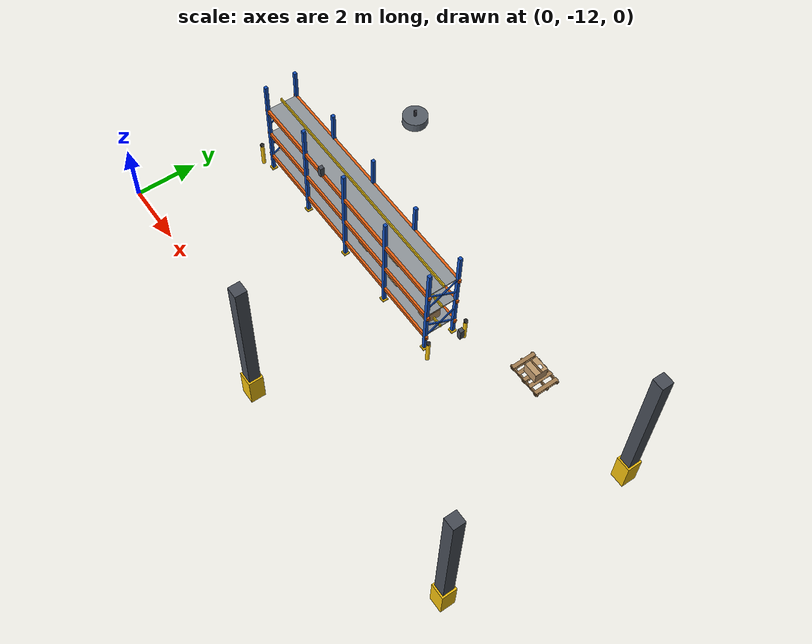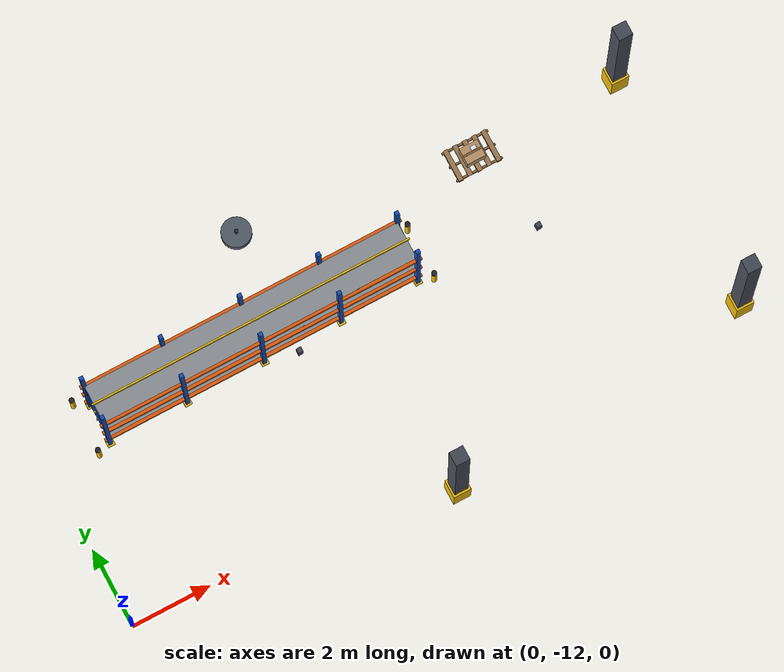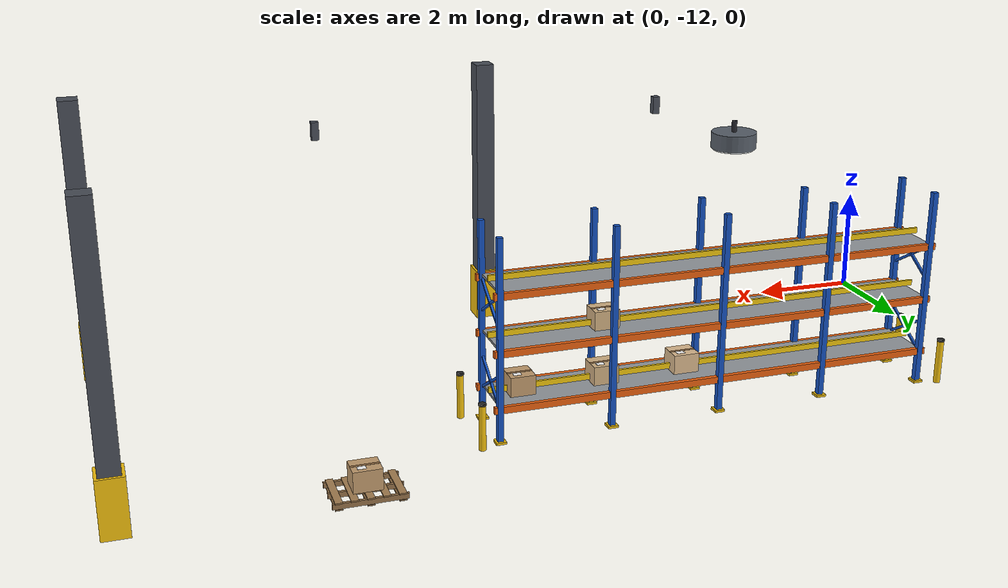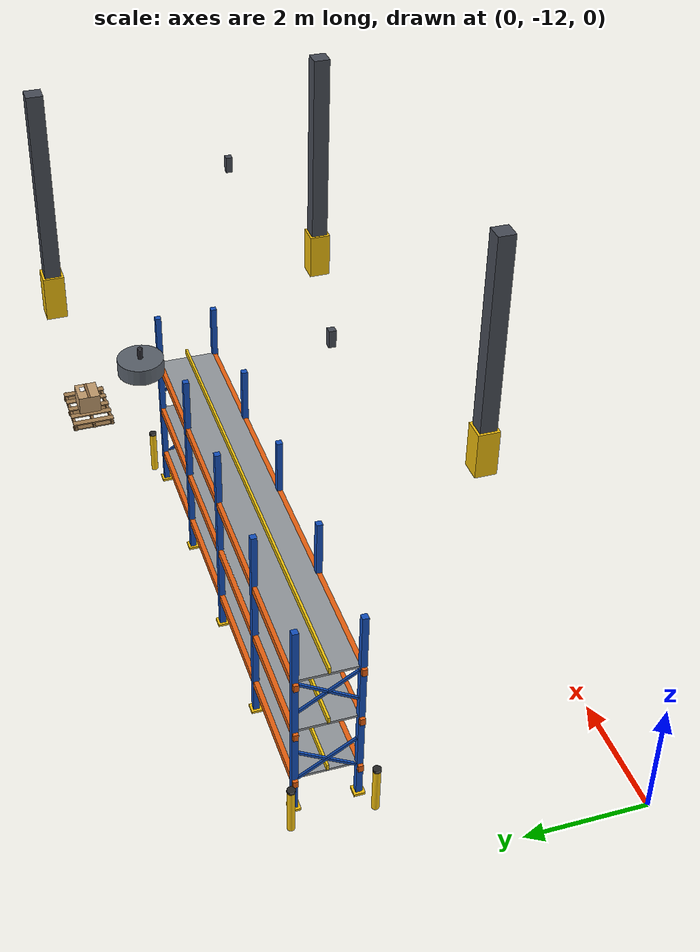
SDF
<sdf version="1.8">
 <world name="warehouse_3d">
  <model name="warehouse_architecture">
   <static>true</static>
   <link name="col_4_base">
    <pose>15.7500 -12.0000 0.5000 0.0000 0.0000 0.0000</pose>
    <collision name="col_4_base_col"><geometry><box><size>0.4500 0.4500 1.0000</size></box></geometry></collision>
    <visual name="col_4_base_vis">
     <geometry><box><size>0.4500 0.4500 1.0000</size></box></geometry>
     <material>
      <ambient>0.617 0.488 0.033 1.00</ambient>
      <diffuse>0.950 0.750 0.050 1.00</diffuse>
      <specular>0.15 0.15 0.15 1.0</specular>
     </material>
    </visual>
   </link>
   <link name="col_4_stem">
    <pose>15.7500 -12.0000 3.1000 0.0000 0.0000 0.0000</pose>
    <collision name="col_4_stem_col"><geometry><box><size>0.3500 0.3500 4.2000</size></box></geometry></collision>
    <visual name="col_4_stem_vis">
     <geometry><box><size>0.3500 0.3500 4.2000</size></box></geometry>
     <material>
      <ambient>0.182 0.195 0.221 1.00</ambient>
      <diffuse>0.280 0.300 0.340 1.00</diffuse>
      <specular>0.15 0.15 0.15 1.0</specular>
     </material>
    </visual>
   </link>
   <link name="col_5_base">
    <pose>15.7500 -6.0000 0.5000 0.0000 0.0000 0.0000</pose>
    <collision name="col_5_base_col"><geometry><box><size>0.4500 0.4500 1.0000</size></box></geometry></collision>
    <visual name="col_5_base_vis">
     <geometry><box><size>0.4500 0.4500 1.0000</size></box></geometry>
     <material>
      <ambient>0.617 0.488 0.033 1.00</ambient>
      <diffuse>0.950 0.750 0.050 1.00</diffuse>
      <specular>0.15 0.15 0.15 1.0</specular>
     </material>
    </visual>
   </link>
   <link name="col_5_stem">
    <pose>15.7500 -6.0000 3.1000 0.0000 0.0000 0.0000</pose>
    <collision name="col_5_stem_col"><geometry><box><size>0.3500 0.3500 4.2000</size></box></geometry></collision>
    <visual name="col_5_stem_vis">
     <geometry><box><size>0.3500 0.3500 4.2000</size></box></geometry>
     <material>
      <ambient>0.182 0.195 0.221 1.00</ambient>
      <diffuse>0.280 0.300 0.340 1.00</diffuse>
      <specular>0.15 0.15 0.15 1.0</specular>
     </material>
    </visual>
   </link>
   <link name="col_14_base">
    <pose>8.0000 -12.7500 0.5000 0.0000 0.0000 0.0000</pose>
    <collision name="col_14_base_col">
     <geometry><box><size>0.4500 0.4500 1.0000</size></box></geometry>
    </collision>
    <visual name="col_14_base_vis">
     <geometry><box><size>0.4500 0.4500 1.0000</size></box></geometry>
     <material>
      <ambient>0.617 0.488 0.033 1.00</ambient>
      <diffuse>0.950 0.750 0.050 1.00</diffuse>
      <specular>0.15 0.15 0.15 1.0</specular>
     </material>
    </visual>
   </link>
   <link name="col_14_stem">
    <pose>8.0000 -12.7500 3.1000 0.0000 0.0000 0.0000</pose>
    <collision name="col_14_stem_col">
     <geometry><box><size>0.3500 0.3500 4.2000</size></box></geometry>
    </collision>
    <visual name="col_14_stem_vis">
     <geometry><box><size>0.3500 0.3500 4.2000</size></box></geometry>
     <material>
      <ambient>0.182 0.195 0.221 1.00</ambient>
      <diffuse>0.280 0.300 0.340 1.00</diffuse>
      <specular>0.15 0.15 0.15 1.0</specular>
     </material>
    </visual>
   </link>
   <link name="truss_web_0_3">
    <pose>6.0000 -9.0000 5.0500 0.0000 0.0000 0.0000</pose>
    <visual name="truss_web_0_3_vis">
     <geometry><box><size>0.1200 0.1200 0.3000</size></box></geometry>
     <material>
      <ambient>0.182 0.195 0.221 1.00</ambient>
      <diffuse>0.280 0.300 0.340 1.00</diffuse>
      <specular>0.15 0.15 0.15 1.0</specular>
     </material>
    </visual>
   </link>
   <link name="truss_web_0_4">
    <pose>12.0000 -9.0000 5.0500 0.0000 0.0000 0.0000</pose>
    <visual name="truss_web_0_4_vis">
     <geometry><box><size>0.1200 0.1200 0.3000</size></box></geometry>
     <material>
      <ambient>0.182 0.195 0.221 1.00</ambient>
      <diffuse>0.280 0.300 0.340 1.00</diffuse>
      <specular>0.15 0.15 0.15 1.0</specular>
     </material>
    </visual>
   </link>
   <link name="fixture_bell_6">
    <pose>6.0000 -6.0000 5.1500 0.0000 0.0000 0.0000</pose>
    <visual name="fixture_bell_6_vis">
     <geometry><cylinder><radius>0.3500</radius><length>0.2500</length></cylinder></geometry>
     <material>
      <ambient>0.227 0.247 0.273 1.00</ambient>
      <diffuse>0.350 0.380 0.420 1.00</diffuse>
      <specular>0.2 0.2 0.2 1.0</specular>
     </material>
    </visual>
   </link>
   <link name="fixture_stem_6">
    <pose>6.0000 -6.0000 5.3500 0.0000 0.0000 0.0000</pose>
    <visual name="fixture_stem_6_vis">
     <geometry><cylinder><radius>0.0400</radius><length>0.2000</length></cylinder></geometry>
     <material>
      <ambient>0.098 0.098 0.117 1.00</ambient>
      <diffuse>0.150 0.150 0.180 1.00</diffuse>
      <specular>0.2 0.2 0.2 1.0</specular>
     </material>
    </visual>
   </link>
   <link name="fixture_lens_6">
    <pose>6.0000 -6.0000 5.0200 0.0000 0.0000 0.0000</pose>
    <visual name="fixture_lens_6_vis">
     <geometry><cylinder><radius>0.3200</radius><length>0.0400</length></cylinder></geometry>
     <material>
      <ambient>0.617 0.637 0.650 1.00</ambient>
      <diffuse>0.950 0.980 1.000 1.00</diffuse>
      <specular>0.2 0.2 0.2 1.0</specular>
      <emissive>0.850 0.880 0.950 1.0</emissive>
     </material>
    </visual>
   </link>
  </model>
  <model name="Rack_A_East">
   <static>true</static>
   <pose>5.50 -7.50 0 0 0 0</pose>
   <link name="col_0_0">
    <pose>-4.0000 -0.5000 1.8000 0.0000 0.0000 0.0000</pose>
    <collision name="col_0_0_col"><geometry><box><size>0.1000 0.1000 3.6000</size></box></geometry></collision>
    <visual name="col_0_0_vis">
     <geometry><box><size>0.1000 0.1000 3.6000</size></box></geometry>
     <material>
      <ambient>0.052 0.208 0.488 1.00</ambient>
      <diffuse>0.080 0.320 0.750 1.00</diffuse>
      <specular>0.15 0.15 0.15 1.0</specular>
     </material>
    </visual>
   </link>
   <link name="foot_0_0">
    <pose>-4.0000 -0.5000 0.0200 0.0000 0.0000 0.0000</pose>
    <collision name="foot_0_0_col"><geometry><box><size>0.1800 0.1800 0.0400</size></box></geometry></collision>
    <visual name="foot_0_0_vis">
     <geometry><box><size>0.1800 0.1800 0.0400</size></box></geometry>
     <material>
      <ambient>0.617 0.488 0.033 1.00</ambient>
      <diffuse>0.950 0.750 0.050 1.00</diffuse>
      <specular>0.15 0.15 0.15 1.0</specular>
     </material>
    </visual>
   </link>
   <link name="col_0_1">
    <pose>-4.0000 0.5000 1.8000 0.0000 0.0000 0.0000</pose>
    <collision name="col_0_1_col"><geometry><box><size>0.1000 0.1000 3.6000</size></box></geometry></collision>
    <visual name="col_0_1_vis">
     <geometry><box><size>0.1000 0.1000 3.6000</size></box></geometry>
     <material>
      <ambient>0.052 0.208 0.488 1.00</ambient>
      <diffuse>0.080 0.320 0.750 1.00</diffuse>
      <specular>0.15 0.15 0.15 1.0</specular>
     </material>
    </visual>
   </link>
   <link name="foot_0_1">
    <pose>-4.0000 0.5000 0.0200 0.0000 0.0000 0.0000</pose>
    <collision name="foot_0_1_col"><geometry><box><size>0.1800 0.1800 0.0400</size></box></geometry></collision>
    <visual name="foot_0_1_vis">
     <geometry><box><size>0.1800 0.1800 0.0400</size></box></geometry>
     <material>
      <ambient>0.617 0.488 0.033 1.00</ambient>
      <diffuse>0.950 0.750 0.050 1.00</diffuse>
      <specular>0.15 0.15 0.15 1.0</specular>
     </material>
    </visual>
   </link>
   <link name="col_1_0">
    <pose>-2.0000 -0.5000 1.8000 0.0000 0.0000 0.0000</pose>
    <collision name="col_1_0_col"><geometry><box><size>0.1000 0.1000 3.6000</size></box></geometry></collision>
    <visual name="col_1_0_vis">
     <geometry><box><size>0.1000 0.1000 3.6000</size></box></geometry>
     <material>
      <ambient>0.052 0.208 0.488 1.00</ambient>
      <diffuse>0.080 0.320 0.750 1.00</diffuse>
      <specular>0.15 0.15 0.15 1.0</specular>
     </material>
    </visual>
   </link>
   <link name="foot_1_0">
    <pose>-2.0000 -0.5000 0.0200 0.0000 0.0000 0.0000</pose>
    <collision name="foot_1_0_col"><geometry><box><size>0.1800 0.1800 0.0400</size></box></geometry></collision>
    <visual name="foot_1_0_vis">
     <geometry><box><size>0.1800 0.1800 0.0400</size></box></geometry>
     <material>
      <ambient>0.617 0.488 0.033 1.00</ambient>
      <diffuse>0.950 0.750 0.050 1.00</diffuse>
      <specular>0.15 0.15 0.15 1.0</specular>
     </material>
    </visual>
   </link>
   <link name="col_1_1">
    <pose>-2.0000 0.5000 1.8000 0.0000 0.0000 0.0000</pose>
    <collision name="col_1_1_col"><geometry><box><size>0.1000 0.1000 3.6000</size></box></geometry></collision>
    <visual name="col_1_1_vis">
     <geometry><box><size>0.1000 0.1000 3.6000</size></box></geometry>
     <material>
      <ambient>0.052 0.208 0.488 1.00</ambient>
      <diffuse>0.080 0.320 0.750 1.00</diffuse>
      <specular>0.15 0.15 0.15 1.0</specular>
     </material>
    </visual>
   </link>
   <link name="foot_1_1">
    <pose>-2.0000 0.5000 0.0200 0.0000 0.0000 0.0000</pose>
    <collision name="foot_1_1_col"><geometry><box><size>0.1800 0.1800 0.0400</size></box></geometry></collision>
    <visual name="foot_1_1_vis">
     <geometry><box><size>0.1800 0.1800 0.0400</size></box></geometry>
     <material>
      <ambient>0.617 0.488 0.033 1.00</ambient>
      <diffuse>0.950 0.750 0.050 1.00</diffuse>
      <specular>0.15 0.15 0.15 1.0</specular>
     </material>
    </visual>
   </link>
   <link name="col_2_0">
    <pose>0.0000 -0.5000 1.8000 0.0000 0.0000 0.0000</pose>
    <collision name="col_2_0_col"><geometry><box><size>0.1000 0.1000 3.6000</size></box></geometry></collision>
    <visual name="col_2_0_vis">
     <geometry><box><size>0.1000 0.1000 3.6000</size></box></geometry>
     <material>
      <ambient>0.052 0.208 0.488 1.00</ambient>
      <diffuse>0.080 0.320 0.750 1.00</diffuse>
      <specular>0.15 0.15 0.15 1.0</specular>
     </material>
    </visual>
   </link>
   <link name="foot_2_0">
    <pose>0.0000 -0.5000 0.0200 0.0000 0.0000 0.0000</pose>
    <collision name="foot_2_0_col"><geometry><box><size>0.1800 0.1800 0.0400</size></box></geometry></collision>
    <visual name="foot_2_0_vis">
     <geometry><box><size>0.1800 0.1800 0.0400</size></box></geometry>
     <material>
      <ambient>0.617 0.488 0.033 1.00</ambient>
      <diffuse>0.950 0.750 0.050 1.00</diffuse>
      <specular>0.15 0.15 0.15 1.0</specular>
     </material>
    </visual>
   </link>
   <link name="col_2_1">
    <pose>0.0000 0.5000 1.8000 0.0000 0.0000 0.0000</pose>
    <collision name="col_2_1_col"><geometry><box><size>0.1000 0.1000 3.6000</size></box></geometry></collision>
    <visual name="col_2_1_vis">
     <geometry><box><size>0.1000 0.1000 3.6000</size></box></geometry>
     <material>
      <ambient>0.052 0.208 0.488 1.00</ambient>
      <diffuse>0.080 0.320 0.750 1.00</diffuse>
      <specular>0.15 0.15 0.15 1.0</specular>
     </material>
    </visual>
   </link>
   <link name="foot_2_1">
    <pose>0.0000 0.5000 0.0200 0.0000 0.0000 0.0000</pose>
    <collision name="foot_2_1_col"><geometry><box><size>0.1800 0.1800 0.0400</size></box></geometry></collision>
    <visual name="foot_2_1_vis">
     <geometry><box><size>0.1800 0.1800 0.0400</size></box></geometry>
     <material>
      <ambient>0.617 0.488 0.033 1.00</ambient>
      <diffuse>0.950 0.750 0.050 1.00</diffuse>
      <specular>0.15 0.15 0.15 1.0</specular>
     </material>
    </visual>
   </link>
   <link name="col_3_0">
    <pose>2.0000 -0.5000 1.8000 0.0000 0.0000 0.0000</pose>
    <collision name="col_3_0_col"><geometry><box><size>0.1000 0.1000 3.6000</size></box></geometry></collision>
    <visual name="col_3_0_vis">
     <geometry><box><size>0.1000 0.1000 3.6000</size></box></geometry>
     <material>
      <ambient>0.052 0.208 0.488 1.00</ambient>
      <diffuse>0.080 0.320 0.750 1.00</diffuse>
      <specular>0.15 0.15 0.15 1.0</specular>
     </material>
    </visual>
   </link>
   <link name="foot_3_0">
    <pose>2.0000 -0.5000 0.0200 0.0000 0.0000 0.0000</pose>
    <collision name="foot_3_0_col"><geometry><box><size>0.1800 0.1800 0.0400</size></box></geometry></collision>
    <visual name="foot_3_0_vis">
     <geometry><box><size>0.1800 0.1800 0.0400</size></box></geometry>
     <material>
      <ambient>0.617 0.488 0.033 1.00</ambient>
      <diffuse>0.950 0.750 0.050 1.00</diffuse>
      <specular>0.15 0.15 0.15 1.0</specular>
     </material>
    </visual>
   </link>
   <link name="col_3_1">
    <pose>2.0000 0.5000 1.8000 0.0000 0.0000 0.0000</pose>
    <collision name="col_3_1_col"><geometry><box><size>0.1000 0.1000 3.6000</size></box></geometry></collision>
    <visual name="col_3_1_vis">
     <geometry><box><size>0.1000 0.1000 3.6000</size></box></geometry>
     <material>
      <ambient>0.052 0.208 0.488 1.00</ambient>
      <diffuse>0.080 0.320 0.750 1.00</diffuse>
      <specular>0.15 0.15 0.15 1.0</specular>
     </material>
    </visual>
   </link>
   <link name="foot_3_1">
    <pose>2.0000 0.5000 0.0200 0.0000 0.0000 0.0000</pose>
    <collision name="foot_3_1_col"><geometry><box><size>0.1800 0.1800 0.0400</size></box></geometry></collision>
    <visual name="foot_3_1_vis">
     <geometry><box><size>0.1800 0.1800 0.0400</size></box></geometry>
     <material>
      <ambient>0.617 0.488 0.033 1.00</ambient>
      <diffuse>0.950 0.750 0.050 1.00</diffuse>
      <specular>0.15 0.15 0.15 1.0</specular>
     </material>
    </visual>
   </link>
   <link name="col_4_0">
    <pose>4.0000 -0.5000 1.8000 0.0000 0.0000 0.0000</pose>
    <collision name="col_4_0_col"><geometry><box><size>0.1000 0.1000 3.6000</size></box></geometry></collision>
    <visual name="col_4_0_vis">
     <geometry><box><size>0.1000 0.1000 3.6000</size></box></geometry>
     <material>
      <ambient>0.052 0.208 0.488 1.00</ambient>
      <diffuse>0.080 0.320 0.750 1.00</diffuse>
      <specular>0.15 0.15 0.15 1.0</specular>
     </material>
    </visual>
   </link>
   <link name="foot_4_0">
    <pose>4.0000 -0.5000 0.0200 0.0000 0.0000 0.0000</pose>
    <collision name="foot_4_0_col"><geometry><box><size>0.1800 0.1800 0.0400</size></box></geometry></collision>
    <visual name="foot_4_0_vis">
     <geometry><box><size>0.1800 0.1800 0.0400</size></box></geometry>
     <material>
      <ambient>0.617 0.488 0.033 1.00</ambient>
      <diffuse>0.950 0.750 0.050 1.00</diffuse>
      <specular>0.15 0.15 0.15 1.0</specular>
     </material>
    </visual>
   </link>
   <link name="col_4_1">
    <pose>4.0000 0.5000 1.8000 0.0000 0.0000 0.0000</pose>
    <collision name="col_4_1_col"><geometry><box><size>0.1000 0.1000 3.6000</size></box></geometry></collision>
    <visual name="col_4_1_vis">
     <geometry><box><size>0.1000 0.1000 3.6000</size></box></geometry>
     <material>
      <ambient>0.052 0.208 0.488 1.00</ambient>
      <diffuse>0.080 0.320 0.750 1.00</diffuse>
      <specular>0.15 0.15 0.15 1.0</specular>
     </material>
    </visual>
   </link>
   <link name="foot_4_1">
    <pose>4.0000 0.5000 0.0200 0.0000 0.0000 0.0000</pose>
    <collision name="foot_4_1_col"><geometry><box><size>0.1800 0.1800 0.0400</size></box></geometry></collision>
    <visual name="foot_4_1_vis">
     <geometry><box><size>0.1800 0.1800 0.0400</size></box></geometry>
     <material>
      <ambient>0.617 0.488 0.033 1.00</ambient>
      <diffuse>0.950 0.750 0.050 1.00</diffuse>
      <specular>0.15 0.15 0.15 1.0</specular>
     </material>
    </visual>
   </link>
   <link name="x_brace_low_1_w">
    <pose>-4.0000 0.0000 0.9000 0.5500 0.0000 0.0000</pose>
    <visual name="x_brace_low_1_w_vis">
     <geometry><box><size>0.0400 1.0500 0.0400</size></box></geometry>
     <material>
      <ambient>0.052 0.208 0.488 1.00</ambient>
      <diffuse>0.080 0.320 0.750 1.00</diffuse>
      <specular>0.15 0.15 0.15 1.0</specular>
     </material>
    </visual>
   </link>
   <link name="x_brace_low_2_w">
    <pose>-4.0000 0.0000 0.9000 -0.5500 0.0000 0.0000</pose>
    <visual name="x_brace_low_2_w_vis">
     <geometry><box><size>0.0400 1.0500 0.0400</size></box></geometry>
     <material>
      <ambient>0.052 0.208 0.488 1.00</ambient>
      <diffuse>0.080 0.320 0.750 1.00</diffuse>
      <specular>0.15 0.15 0.15 1.0</specular>
     </material>
    </visual>
   </link>
   <link name="x_brace_hi_1_w">
    <pose>-4.0000 0.0000 2.3000 0.5500 0.0000 0.0000</pose>
    <visual name="x_brace_hi_1_w_vis">
     <geometry><box><size>0.0400 1.0500 0.0400</size></box></geometry>
     <material>
      <ambient>0.052 0.208 0.488 1.00</ambient>
      <diffuse>0.080 0.320 0.750 1.00</diffuse>
      <specular>0.15 0.15 0.15 1.0</specular>
     </material>
    </visual>
   </link>
   <link name="x_brace_hi_2_w">
    <pose>-4.0000 0.0000 2.3000 -0.5500 0.0000 0.0000</pose>
    <visual name="x_brace_hi_2_w_vis">
     <geometry><box><size>0.0400 1.0500 0.0400</size></box></geometry>
     <material>
      <ambient>0.052 0.208 0.488 1.00</ambient>
      <diffuse>0.080 0.320 0.750 1.00</diffuse>
      <specular>0.15 0.15 0.15 1.0</specular>
     </material>
    </visual>
   </link>
   <link name="x_brace_low_1_e">
    <pose>4.0000 0.0000 0.9000 0.5500 0.0000 0.0000</pose>
    <visual name="x_brace_low_1_e_vis">
     <geometry><box><size>0.0400 1.0500 0.0400</size></box></geometry>
     <material>
      <ambient>0.052 0.208 0.488 1.00</ambient>
      <diffuse>0.080 0.320 0.750 1.00</diffuse>
      <specular>0.15 0.15 0.15 1.0</specular>
     </material>
    </visual>
   </link>
   <link name="x_brace_low_2_e">
    <pose>4.0000 0.0000 0.9000 -0.5500 0.0000 0.0000</pose>
    <visual name="x_brace_low_2_e_vis">
     <geometry><box><size>0.0400 1.0500 0.0400</size></box></geometry>
     <material>
      <ambient>0.052 0.208 0.488 1.00</ambient>
      <diffuse>0.080 0.320 0.750 1.00</diffuse>
      <specular>0.15 0.15 0.15 1.0</specular>
     </material>
    </visual>
   </link>
   <link name="x_brace_hi_1_e">
    <pose>4.0000 0.0000 2.3000 0.5500 0.0000 0.0000</pose>
    <visual name="x_brace_hi_1_e_vis">
     <geometry><box><size>0.0400 1.0500 0.0400</size></box></geometry>
     <material>
      <ambient>0.052 0.208 0.488 1.00</ambient>
      <diffuse>0.080 0.320 0.750 1.00</diffuse>
      <specular>0.15 0.15 0.15 1.0</specular>
     </material>
    </visual>
   </link>
   <link name="x_brace_hi_2_e">
    <pose>4.0000 0.0000 2.3000 -0.5500 0.0000 0.0000</pose>
    <visual name="x_brace_hi_2_e_vis">
     <geometry><box><size>0.0400 1.0500 0.0400</size></box></geometry>
     <material>
      <ambient>0.052 0.208 0.488 1.00</ambient>
      <diffuse>0.080 0.320 0.750 1.00</diffuse>
      <specular>0.15 0.15 0.15 1.0</specular>
     </material>
    </visual>
   </link>
   <link name="beam_front_0">
    <pose>0.0000 0.5000 0.6000 0.0000 0.0000 0.0000</pose>
    <collision name="beam_front_0_col">
     <geometry><box><size>8.2000 0.0800 0.1200</size></box></geometry>
    </collision>
    <visual name="beam_front_0_vis">
     <geometry><box><size>8.2000 0.0800 0.1200</size></box></geometry>
     <material>
      <ambient>0.598 0.247 0.039 1.00</ambient>
      <diffuse>0.920 0.380 0.060 1.00</diffuse>
      <specular>0.15 0.15 0.15 1.0</specular>
     </material>
    </visual>
   </link>
   <link name="beam_rear_0">
    <pose>0.0000 -0.5000 0.6000 0.0000 0.0000 0.0000</pose>
    <collision name="beam_rear_0_col">
     <geometry><box><size>8.2000 0.0800 0.1200</size></box></geometry>
    </collision>
    <visual name="beam_rear_0_vis">
     <geometry><box><size>8.2000 0.0800 0.1200</size></box></geometry>
     <material>
      <ambient>0.598 0.247 0.039 1.00</ambient>
      <diffuse>0.920 0.380 0.060 1.00</diffuse>
      <specular>0.15 0.15 0.15 1.0</specular>
     </material>
    </visual>
   </link>
   <link name="deck_0">
    <pose>0.0000 0.0000 0.6400 0.0000 0.0000 0.0000</pose>
    <collision name="deck_0_col"><geometry><box><size>8.0000 0.9400 0.0400</size></box></geometry></collision>
    <visual name="deck_0_vis">
     <geometry><box><size>8.0000 0.9400 0.0400</size></box></geometry>
     <material>
      <ambient>0.377 0.390 0.403 1.00</ambient>
      <diffuse>0.580 0.600 0.620 1.00</diffuse>
      <specular>0.15 0.15 0.15 1.0</specular>
     </material>
    </visual>
   </link>
   <link name="backstop_0">
    <pose>0.0000 0.0000 0.7500 0.0000 0.0000 0.0000</pose>
    <visual name="backstop_0_vis">
     <geometry><box><size>8.1000 0.0400 0.1000</size></box></geometry>
     <material>
      <ambient>0.617 0.507 0.033 1.00</ambient>
      <diffuse>0.950 0.780 0.050 1.00</diffuse>
      <specular>0.15 0.15 0.15 1.0</specular>
     </material>
    </visual>
   </link>
   <link name="beam_front_1">
    <pose>0.0000 0.5000 1.6000 0.0000 0.0000 0.0000</pose>
    <collision name="beam_front_1_col">
     <geometry><box><size>8.2000 0.0800 0.1200</size></box></geometry>
    </collision>
    <visual name="beam_front_1_vis">
     <geometry><box><size>8.2000 0.0800 0.1200</size></box></geometry>
     <material>
      <ambient>0.598 0.247 0.039 1.00</ambient>
      <diffuse>0.920 0.380 0.060 1.00</diffuse>
      <specular>0.15 0.15 0.15 1.0</specular>
     </material>
    </visual>
   </link>
   <link name="beam_rear_1">
    <pose>0.0000 -0.5000 1.6000 0.0000 0.0000 0.0000</pose>
    <collision name="beam_rear_1_col">
     <geometry><box><size>8.2000 0.0800 0.1200</size></box></geometry>
    </collision>
    <visual name="beam_rear_1_vis">
     <geometry><box><size>8.2000 0.0800 0.1200</size></box></geometry>
     <material>
      <ambient>0.598 0.247 0.039 1.00</ambient>
      <diffuse>0.920 0.380 0.060 1.00</diffuse>
      <specular>0.15 0.15 0.15 1.0</specular>
     </material>
    </visual>
   </link>
   <link name="deck_1">
    <pose>0.0000 0.0000 1.6400 0.0000 0.0000 0.0000</pose>
    <collision name="deck_1_col"><geometry><box><size>8.0000 0.9400 0.0400</size></box></geometry></collision>
    <visual name="deck_1_vis">
     <geometry><box><size>8.0000 0.9400 0.0400</size></box></geometry>
     <material>
      <ambient>0.377 0.390 0.403 1.00</ambient>
      <diffuse>0.580 0.600 0.620 1.00</diffuse>
      <specular>0.15 0.15 0.15 1.0</specular>
     </material>
    </visual>
   </link>
   <link name="backstop_1">
    <pose>0.0000 0.0000 1.7500 0.0000 0.0000 0.0000</pose>
    <visual name="backstop_1_vis">
     <geometry><box><size>8.1000 0.0400 0.1000</size></box></geometry>
     <material>
      <ambient>0.617 0.507 0.033 1.00</ambient>
      <diffuse>0.950 0.780 0.050 1.00</diffuse>
      <specular>0.15 0.15 0.15 1.0</specular>
     </material>
    </visual>
   </link>
   <link name="beam_front_2">
    <pose>0.0000 0.5000 2.6000 0.0000 0.0000 0.0000</pose>
    <collision name="beam_front_2_col">
     <geometry><box><size>8.2000 0.0800 0.1200</size></box></geometry>
    </collision>
    <visual name="beam_front_2_vis">
     <geometry><box><size>8.2000 0.0800 0.1200</size></box></geometry>
     <material>
      <ambient>0.598 0.247 0.039 1.00</ambient>
      <diffuse>0.920 0.380 0.060 1.00</diffuse>
      <specular>0.15 0.15 0.15 1.0</specular>
     </material>
    </visual>
   </link>
   <link name="beam_rear_2">
    <pose>0.0000 -0.5000 2.6000 0.0000 0.0000 0.0000</pose>
    <collision name="beam_rear_2_col">
     <geometry><box><size>8.2000 0.0800 0.1200</size></box></geometry>
    </collision>
    <visual name="beam_rear_2_vis">
     <geometry><box><size>8.2000 0.0800 0.1200</size></box></geometry>
     <material>
      <ambient>0.598 0.247 0.039 1.00</ambient>
      <diffuse>0.920 0.380 0.060 1.00</diffuse>
      <specular>0.15 0.15 0.15 1.0</specular>
     </material>
    </visual>
   </link>
   <link name="deck_2">
    <pose>0.0000 0.0000 2.6400 0.0000 0.0000 0.0000</pose>
    <collision name="deck_2_col"><geometry><box><size>8.0000 0.9400 0.0400</size></box></geometry></collision>
    <visual name="deck_2_vis">
     <geometry><box><size>8.0000 0.9400 0.0400</size></box></geometry>
     <material>
      <ambient>0.377 0.390 0.403 1.00</ambient>
      <diffuse>0.580 0.600 0.620 1.00</diffuse>
      <specular>0.15 0.15 0.15 1.0</specular>
     </material>
    </visual>
   </link>
   <link name="backstop_2">
    <pose>0.0000 0.0000 2.7500 0.0000 0.0000 0.0000</pose>
    <visual name="backstop_2_vis">
     <geometry><box><size>8.1000 0.0400 0.1000</size></box></geometry>
     <material>
      <ambient>0.617 0.507 0.033 1.00</ambient>
      <diffuse>0.950 0.780 0.050 1.00</diffuse>
      <specular>0.15 0.15 0.15 1.0</specular>
     </material>
    </visual>
   </link>
   <link name="bollard_0">
    <pose>-4.3500 -0.6500 0.4000 0.0000 0.0000 0.0000</pose>
    <collision name="bollard_0_col">
     <geometry><cylinder><radius>0.0600</radius><length>0.8000</length></cylinder></geometry>
    </collision>
    <visual name="bollard_0_vis">
     <geometry><cylinder><radius>0.0600</radius><length>0.8000</length></cylinder></geometry>
     <material>
      <ambient>0.617 0.488 0.033 1.00</ambient>
      <diffuse>0.950 0.750 0.050 1.00</diffuse>
      <specular>0.2 0.2 0.2 1.0</specular>
     </material>
    </visual>
   </link>
   <link name="bollard_cap_0">
    <pose>-4.3500 -0.6500 0.8200 0.0000 0.0000 0.0000</pose>
    <collision name="bollard_cap_0_col">
     <geometry><cylinder><radius>0.0650</radius><length>0.0400</length></cylinder></geometry>
    </collision>
    <visual name="bollard_cap_0_vis">
     <geometry><cylinder><radius>0.0650</radius><length>0.0400</length></cylinder></geometry>
     <material>
      <ambient>0.098 0.098 0.098 1.00</ambient>
      <diffuse>0.150 0.150 0.150 1.00</diffuse>
      <specular>0.2 0.2 0.2 1.0</specular>
     </material>
    </visual>
   </link>
   <link name="bollard_1">
    <pose>-4.3500 0.6500 0.4000 0.0000 0.0000 0.0000</pose>
    <collision name="bollard_1_col">
     <geometry><cylinder><radius>0.0600</radius><length>0.8000</length></cylinder></geometry>
    </collision>
    <visual name="bollard_1_vis">
     <geometry><cylinder><radius>0.0600</radius><length>0.8000</length></cylinder></geometry>
     <material>
      <ambient>0.617 0.488 0.033 1.00</ambient>
      <diffuse>0.950 0.750 0.050 1.00</diffuse>
      <specular>0.2 0.2 0.2 1.0</specular>
     </material>
    </visual>
   </link>
   <link name="bollard_cap_1">
    <pose>-4.3500 0.6500 0.8200 0.0000 0.0000 0.0000</pose>
    <collision name="bollard_cap_1_col">
     <geometry><cylinder><radius>0.0650</radius><length>0.0400</length></cylinder></geometry>
    </collision>
    <visual name="bollard_cap_1_vis">
     <geometry><cylinder><radius>0.0650</radius><length>0.0400</length></cylinder></geometry>
     <material>
      <ambient>0.098 0.098 0.098 1.00</ambient>
      <diffuse>0.150 0.150 0.150 1.00</diffuse>
      <specular>0.2 0.2 0.2 1.0</specular>
     </material>
    </visual>
   </link>
   <link name="bollard_2">
    <pose>4.3500 -0.6500 0.4000 0.0000 0.0000 0.0000</pose>
    <collision name="bollard_2_col">
     <geometry><cylinder><radius>0.0600</radius><length>0.8000</length></cylinder></geometry>
    </collision>
    <visual name="bollard_2_vis">
     <geometry><cylinder><radius>0.0600</radius><length>0.8000</length></cylinder></geometry>
     <material>
      <ambient>0.617 0.488 0.033 1.00</ambient>
      <diffuse>0.950 0.750 0.050 1.00</diffuse>
      <specular>0.2 0.2 0.2 1.0</specular>
     </material>
    </visual>
   </link>
   <link name="bollard_cap_2">
    <pose>4.3500 -0.6500 0.8200 0.0000 0.0000 0.0000</pose>
    <collision name="bollard_cap_2_col">
     <geometry><cylinder><radius>0.0650</radius><length>0.0400</length></cylinder></geometry>
    </collision>
    <visual name="bollard_cap_2_vis">
     <geometry><cylinder><radius>0.0650</radius><length>0.0400</length></cylinder></geometry>
     <material>
      <ambient>0.098 0.098 0.098 1.00</ambient>
      <diffuse>0.150 0.150 0.150 1.00</diffuse>
      <specular>0.2 0.2 0.2 1.0</specular>
     </material>
    </visual>
   </link>
   <link name="bollard_3">
    <pose>4.3500 0.6500 0.4000 0.0000 0.0000 0.0000</pose>
    <collision name="bollard_3_col">
     <geometry><cylinder><radius>0.0600</radius><length>0.8000</length></cylinder></geometry>
    </collision>
    <visual name="bollard_3_vis">
     <geometry><cylinder><radius>0.0600</radius><length>0.8000</length></cylinder></geometry>
     <material>
      <ambient>0.617 0.488 0.033 1.00</ambient>
      <diffuse>0.950 0.750 0.050 1.00</diffuse>
      <specular>0.2 0.2 0.2 1.0</specular>
     </material>
    </visual>
   </link>
   <link name="bollard_cap_3">
    <pose>4.3500 0.6500 0.8200 0.0000 0.0000 0.0000</pose>
    <collision name="bollard_cap_3_col">
     <geometry><cylinder><radius>0.0650</radius><length>0.0400</length></cylinder></geometry>
    </collision>
    <visual name="bollard_cap_3_vis">
     <geometry><cylinder><radius>0.0650</radius><length>0.0400</length></cylinder></geometry>
     <material>
      <ambient>0.098 0.098 0.098 1.00</ambient>
      <diffuse>0.150 0.150 0.150 1.00</diffuse>
      <specular>0.2 0.2 0.2 1.0</specular>
     </material>
    </visual>
   </link>
  </model>
  <model name="pallet_aisle_end1">
   <static>true</static>
   <pose>12.00 -6.00 0.00 0 0 0</pose>
   <link name="stringer_0">
    <pose>0.0000 -0.3600 0.0650 0.0000 0.0000 0.0000</pose>
    <collision name="stringer_0_col"><geometry><box><size>1.2000 0.0500 0.0900</size></box></geometry></collision>
    <visual name="stringer_0_vis">
     <geometry><box><size>1.2000 0.0500 0.0900</size></box></geometry>
     <material>
      <ambient>0.377 0.286 0.182 1.00</ambient>
      <diffuse>0.580 0.440 0.280 1.00</diffuse>
      <specular>0.15 0.15 0.15 1.0</specular>
     </material>
    </visual>
   </link>
   <link name="stringer_1">
    <pose>0.0000 0.0000 0.0650 0.0000 0.0000 0.0000</pose>
    <collision name="stringer_1_col"><geometry><box><size>1.2000 0.0500 0.0900</size></box></geometry></collision>
    <visual name="stringer_1_vis">
     <geometry><box><size>1.2000 0.0500 0.0900</size></box></geometry>
     <material>
      <ambient>0.377 0.286 0.182 1.00</ambient>
      <diffuse>0.580 0.440 0.280 1.00</diffuse>
      <specular>0.15 0.15 0.15 1.0</specular>
     </material>
    </visual>
   </link>
   <link name="stringer_2">
    <pose>0.0000 0.3600 0.0650 0.0000 0.0000 0.0000</pose>
    <collision name="stringer_2_col"><geometry><box><size>1.2000 0.0500 0.0900</size></box></geometry></collision>
    <visual name="stringer_2_vis">
     <geometry><box><size>1.2000 0.0500 0.0900</size></box></geometry>
     <material>
      <ambient>0.377 0.286 0.182 1.00</ambient>
      <diffuse>0.580 0.440 0.280 1.00</diffuse>
      <specular>0.15 0.15 0.15 1.0</specular>
     </material>
    </visual>
   </link>
   <link name="top_slat_0">
    <pose>-0.5000 0.0000 0.1200 0.0000 0.0000 0.0000</pose>
    <collision name="top_slat_0_col"><geometry><box><size>0.1200 0.8000 0.0220</size></box></geometry></collision>
    <visual name="top_slat_0_vis">
     <geometry><box><size>0.1200 0.8000 0.0220</size></box></geometry>
     <material>
      <ambient>0.423 0.325 0.208 1.00</ambient>
      <diffuse>0.650 0.500 0.320 1.00</diffuse>
      <specular>0.15 0.15 0.15 1.0</specular>
     </material>
    </visual>
   </link>
   <link name="top_slat_1">
    <pose>-0.2500 0.0000 0.1200 0.0000 0.0000 0.0000</pose>
    <collision name="top_slat_1_col"><geometry><box><size>0.1200 0.8000 0.0220</size></box></geometry></collision>
    <visual name="top_slat_1_vis">
     <geometry><box><size>0.1200 0.8000 0.0220</size></box></geometry>
     <material>
      <ambient>0.423 0.325 0.208 1.00</ambient>
      <diffuse>0.650 0.500 0.320 1.00</diffuse>
      <specular>0.15 0.15 0.15 1.0</specular>
     </material>
    </visual>
   </link>
   <link name="top_slat_2">
    <pose>0.0000 0.0000 0.1200 0.0000 0.0000 0.0000</pose>
    <collision name="top_slat_2_col"><geometry><box><size>0.1200 0.8000 0.0220</size></box></geometry></collision>
    <visual name="top_slat_2_vis">
     <geometry><box><size>0.1200 0.8000 0.0220</size></box></geometry>
     <material>
      <ambient>0.423 0.325 0.208 1.00</ambient>
      <diffuse>0.650 0.500 0.320 1.00</diffuse>
      <specular>0.15 0.15 0.15 1.0</specular>
     </material>
    </visual>
   </link>
   <link name="top_slat_3">
    <pose>0.2500 0.0000 0.1200 0.0000 0.0000 0.0000</pose>
    <collision name="top_slat_3_col"><geometry><box><size>0.1200 0.8000 0.0220</size></box></geometry></collision>
    <visual name="top_slat_3_vis">
     <geometry><box><size>0.1200 0.8000 0.0220</size></box></geometry>
     <material>
      <ambient>0.423 0.325 0.208 1.00</ambient>
      <diffuse>0.650 0.500 0.320 1.00</diffuse>
      <specular>0.15 0.15 0.15 1.0</specular>
     </material>
    </visual>
   </link>
   <link name="top_slat_4">
    <pose>0.5000 0.0000 0.1200 0.0000 0.0000 0.0000</pose>
    <collision name="top_slat_4_col"><geometry><box><size>0.1200 0.8000 0.0220</size></box></geometry></collision>
    <visual name="top_slat_4_vis">
     <geometry><box><size>0.1200 0.8000 0.0220</size></box></geometry>
     <material>
      <ambient>0.423 0.325 0.208 1.00</ambient>
      <diffuse>0.650 0.500 0.320 1.00</diffuse>
      <specular>0.15 0.15 0.15 1.0</specular>
     </material>
    </visual>
   </link>
   <link name="bot_slat_0">
    <pose>-0.5000 0.0000 0.0100 0.0000 0.0000 0.0000</pose>
    <collision name="bot_slat_0_col"><geometry><box><size>0.1200 0.8000 0.0200</size></box></geometry></collision>
    <visual name="bot_slat_0_vis">
     <geometry><box><size>0.1200 0.8000 0.0200</size></box></geometry>
     <material>
      <ambient>0.358 0.273 0.169 1.00</ambient>
      <diffuse>0.550 0.420 0.260 1.00</diffuse>
      <specular>0.15 0.15 0.15 1.0</specular>
     </material>
    </visual>
   </link>
   <link name="bot_slat_1">
    <pose>0.0000 0.0000 0.0100 0.0000 0.0000 0.0000</pose>
    <collision name="bot_slat_1_col"><geometry><box><size>0.1200 0.8000 0.0200</size></box></geometry></collision>
    <visual name="bot_slat_1_vis">
     <geometry><box><size>0.1200 0.8000 0.0200</size></box></geometry>
     <material>
      <ambient>0.358 0.273 0.169 1.00</ambient>
      <diffuse>0.550 0.420 0.260 1.00</diffuse>
      <specular>0.15 0.15 0.15 1.0</specular>
     </material>
    </visual>
   </link>
   <link name="bot_slat_2">
    <pose>0.5000 0.0000 0.0100 0.0000 0.0000 0.0000</pose>
    <collision name="bot_slat_2_col"><geometry><box><size>0.1200 0.8000 0.0200</size></box></geometry></collision>
    <visual name="bot_slat_2_vis">
     <geometry><box><size>0.1200 0.8000 0.0200</size></box></geometry>
     <material>
      <ambient>0.358 0.273 0.169 1.00</ambient>
      <diffuse>0.550 0.420 0.260 1.00</diffuse>
      <specular>0.15 0.15 0.15 1.0</specular>
     </material>
    </visual>
   </link>
  </model>
  <model name="package_P051">
   <static>true</static>
   <pose>6.00 -7.50 0.82 0 0 0</pose>
   <link name="box_link">
    <collision name="box_col"><geometry><box><size>0.46 0.42 0.37</size></box></geometry></collision>
    <visual name="box_vis">
     <geometry><box><size>0.46 0.42 0.37</size></box></geometry>
     <material>
      <ambient>0.60 0.51 0.39 1.0</ambient>
      <diffuse>0.86 0.73 0.56 1.0</diffuse>
      <specular>0.08 0.08 0.08 1.0</specular>
     </material>
    </visual>
    <visual name="top_tape">
     <pose>0 0 0.1860 0 0 0</pose>
     <geometry><box><size>0.462 0.05 0.002</size></box></geometry>
     <material><ambient>0.48 0.35 0.20 1.0</ambient><diffuse>0.55 0.40 0.24 1.0</diffuse></material>
    </visual>
    <visual name="shipping_label">
     <pose>0.069 0.084 0.1870 0 0 0</pose>
     <geometry><box><size>0.14 0.10 0.002</size></box></geometry>
     <material><ambient>0.92 0.92 0.92 1.0</ambient><diffuse>0.98 0.98 0.98 1.0</diffuse></material>
    </visual>
   </link>
  </model>
  <model name="package_P052">
   <static>true</static>
   <pose>7.50 -7.50 0.82 0 0 0</pose>
   <link name="box_link">
    <collision name="box_col"><geometry><box><size>0.45 0.43 0.35</size></box></geometry></collision>
    <visual name="box_vis">
     <geometry><box><size>0.45 0.43 0.35</size></box></geometry>
     <material>
      <ambient>0.57 0.48 0.36 1.0</ambient>
      <diffuse>0.82 0.69 0.51 1.0</diffuse>
      <specular>0.08 0.08 0.08 1.0</specular>
     </material>
    </visual>
    <visual name="top_tape">
     <pose>0 0 0.1760 0 0 0</pose>
     <geometry><box><size>0.452 0.05 0.002</size></box></geometry>
     <material><ambient>0.48 0.35 0.20 1.0</ambient><diffuse>0.55 0.40 0.24 1.0</diffuse></material>
    </visual>
    <visual name="shipping_label">
     <pose>0.068 0.086 0.1770 0 0 0</pose>
     <geometry><box><size>0.14 0.10 0.002</size></box></geometry>
     <material><ambient>0.92 0.92 0.92 1.0</ambient><diffuse>0.98 0.98 0.98 1.0</diffuse></material>
    </visual>
   </link>
  </model>
  <model name="package_P053">
   <static>true</static>
   <pose>9.00 -7.50 0.82 0 0 0</pose>
   <link name="box_link">
    <collision name="box_col"><geometry><box><size>0.44 0.44 0.38</size></box></geometry></collision>
    <visual name="box_vis">
     <geometry><box><size>0.44 0.44 0.38</size></box></geometry>
     <material>
      <ambient>0.53 0.43 0.30 1.0</ambient>
      <diffuse>0.76 0.61 0.43 1.0</diffuse>
      <specular>0.08 0.08 0.08 1.0</specular>
     </material>
    </visual>
    <visual name="top_tape">
     <pose>0 0 0.1910 0 0 0</pose>
     <geometry><box><size>0.442 0.05 0.002</size></box></geometry>
     <material><ambient>0.48 0.35 0.20 1.0</ambient><diffuse>0.55 0.40 0.24 1.0</diffuse></material>
    </visual>
    <visual name="shipping_label">
     <pose>0.066 0.088 0.1920 0 0 0</pose>
     <geometry><box><size>0.14 0.10 0.002</size></box></geometry>
     <material><ambient>0.92 0.92 0.92 1.0</ambient><diffuse>0.98 0.98 0.98 1.0</diffuse></material>
    </visual>
   </link>
  </model>
  <model name="package_P055">
   <static>true</static>
   <pose>7.50 -7.50 1.82 0 0 0</pose>
   <link name="box_link">
    <collision name="box_col"><geometry><box><size>0.45 0.40 0.35</size></box></geometry></collision>
    <visual name="box_vis">
     <geometry><box><size>0.45 0.40 0.35</size></box></geometry>
     <material>
      <ambient>0.57 0.48 0.36 1.0</ambient>
      <diffuse>0.82 0.69 0.51 1.0</diffuse>
      <specular>0.08 0.08 0.08 1.0</specular>
     </material>
    </visual>
    <visual name="top_tape">
     <pose>0 0 0.1760 0 0 0</pose>
     <geometry><box><size>0.452 0.05 0.002</size></box></geometry>
     <material><ambient>0.48 0.35 0.20 1.0</ambient><diffuse>0.55 0.40 0.24 1.0</diffuse></material>
    </visual>
    <visual name="shipping_label">
     <pose>0.068 0.080 0.1770 0 0 0</pose>
     <geometry><box><size>0.14 0.10 0.002</size></box></geometry>
     <material><ambient>0.92 0.92 0.92 1.0</ambient><diffuse>0.98 0.98 0.98 1.0</diffuse></material>
    </visual>
   </link>
  </model>
  <model name="package_P095">
   <static>true</static>
   <pose>12.00 -6.00 0.32 0 0 0</pose>
   <link name="box_link">
    <collision name="box_col"><geometry><box><size>0.48 0.42 0.36</size></box></geometry></collision>
    <visual name="box_vis">
     <geometry><box><size>0.48 0.42 0.36</size></box></geometry>
     <material>
      <ambient>0.53 0.43 0.30 1.0</ambient>
      <diffuse>0.76 0.61 0.43 1.0</diffuse>
      <specular>0.08 0.08 0.08 1.0</specular>
     </material>
    </visual>
    <visual name="top_tape">
     <pose>0 0 0.1810 0 0 0</pose>
     <geometry><box><size>0.482 0.05 0.002</size></box></geometry>
     <material><ambient>0.48 0.35 0.20 1.0</ambient><diffuse>0.55 0.40 0.24 1.0</diffuse></material>
    </visual>
    <visual name="shipping_label">
     <pose>0.072 0.084 0.1820 0 0 0</pose>
     <geometry><box><size>0.14 0.10 0.002</size></box></geometry>
     <material><ambient>0.92 0.92 0.92 1.0</ambient><diffuse>0.98 0.98 0.98 1.0</diffuse></material>
    </visual>
   </link>
  </model>
 </world>
</sdf>
